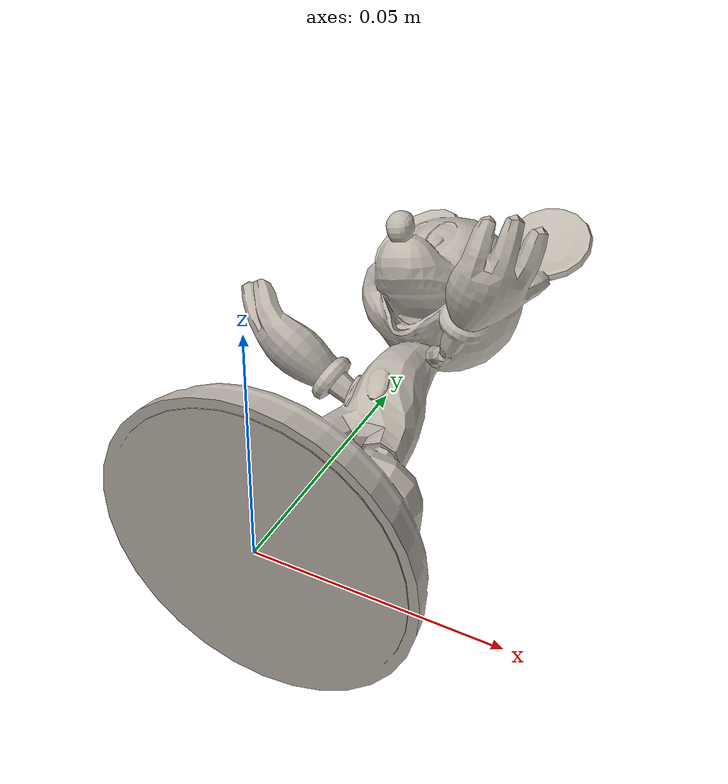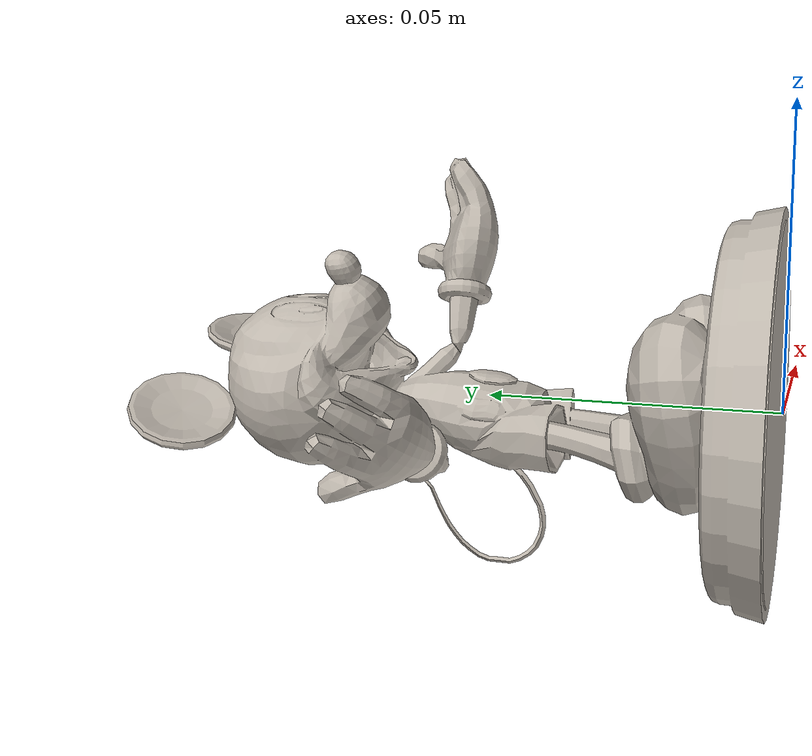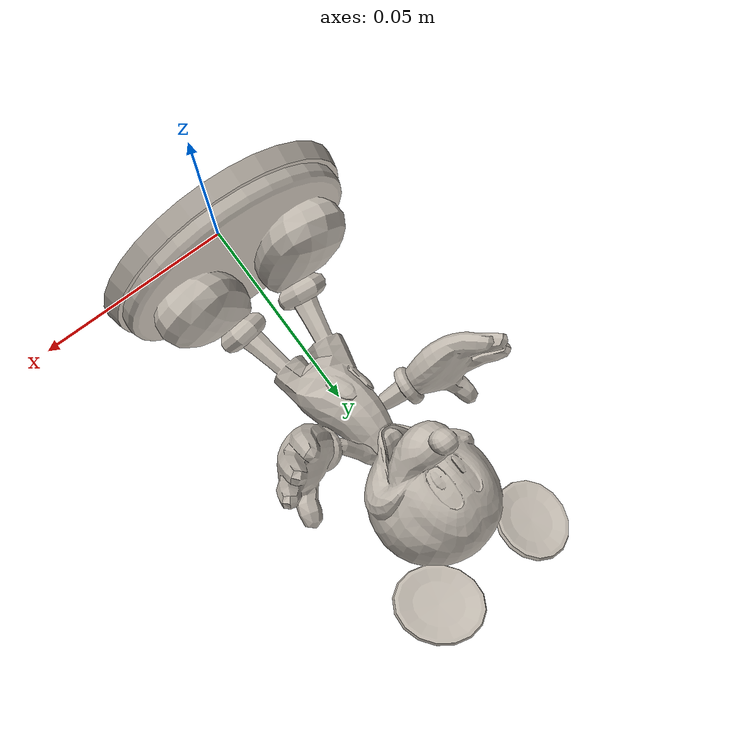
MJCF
<mujoco model="mickey">
  <default>
    <default class="visual">
      <geom group="2" type="mesh" contype="0" conaffinity="0" mass="0.1"/>
    </default>
    <default class="collision">
      <geom group="3" type="mesh" mass="0" solref="0.001 2" solimp="0.998 0.998 0.001"/>
    </default>
     <default class="grasppoint">
      <site type="sphere" size="0.01" group="4" rgba="0 0 1 1"/>
    </default>
  </default>
  <asset>
    <texture name="mickey" file="./mickey.png" type="2d"/>
    <material name="mickey" texture="mickey"/>
    <mesh name="mickey" file="./mickey.obj" scale="0.3 0.3 0.3"/>
    <mesh file="mickey_collision_0.obj" scale="0.3 0.3 0.3"/>
    <mesh file="mickey_collision_1.obj" scale="0.3 0.3 0.3"/>
    <mesh file="mickey_collision_2.obj" scale="0.3 0.3 0.3"/>
    <mesh file="mickey_collision_3.obj" scale="0.3 0.3 0.3"/>
    <mesh file="mickey_collision_4.obj" scale="0.3 0.3 0.3"/>
    <mesh file="mickey_collision_5.obj" scale="0.3 0.3 0.3"/>
    <mesh file="mickey_collision_6.obj" scale="0.3 0.3 0.3"/>
    <mesh file="mickey_collision_7.obj" scale="0.3 0.3 0.3"/>
    <mesh file="mickey_collision_8.obj" scale="0.3 0.3 0.3"/>
    <mesh file="mickey_collision_9.obj" scale="0.3 0.3 0.3"/>
    <mesh file="mickey_collision_10.obj" scale="0.3 0.3 0.3"/>
    <mesh file="mickey_collision_11.obj" scale="0.3 0.3 0.3"/>
    <mesh file="mickey_collision_12.obj" scale="0.3 0.3 0.3"/>
    <mesh file="mickey_collision_13.obj" scale="0.3 0.3 0.3"/>
    <mesh file="mickey_collision_14.obj" scale="0.3 0.3 0.3"/>
    <mesh file="mickey_collision_15.obj" scale="0.3 0.3 0.3"/>
    <mesh file="mickey_collision_16.obj" scale="0.3 0.3 0.3"/>
    <mesh file="mickey_collision_17.obj" scale="0.3 0.3 0.3"/>
    <mesh file="mickey_collision_18.obj" scale="0.3 0.3 0.3"/>
    <mesh file="mickey_collision_19.obj" scale="0.3 0.3 0.3"/>
    <mesh file="mickey_collision_20.obj" scale="0.3 0.3 0.3"/>
    <mesh file="mickey_collision_21.obj" scale="0.3 0.3 0.3"/>
    <mesh file="mickey_collision_22.obj" scale="0.3 0.3 0.3"/>
    <mesh file="mickey_collision_23.obj" scale="0.3 0.3 0.3"/>
    <mesh file="mickey_collision_24.obj" scale="0.3 0.3 0.3"/>
    <mesh file="mickey_collision_25.obj" scale="0.3 0.3 0.3"/>
    <mesh file="mickey_collision_26.obj" scale="0.3 0.3 0.3"/>
    <mesh file="mickey_collision_27.obj" scale="0.3 0.3 0.3"/>
    <mesh file="mickey_collision_28.obj" scale="0.3 0.3 0.3"/>
    <mesh file="mickey_collision_29.obj" scale="0.3 0.3 0.3"/>
    <mesh file="mickey_collision_30.obj" scale="0.3 0.3 0.3"/>
    <mesh file="mickey_collision_31.obj" scale="0.3 0.3 0.3"/>
    <mesh file="mickey_collision_32.obj" scale="0.3 0.3 0.3"/>
    <mesh file="mickey_collision_33.obj" scale="0.3 0.3 0.3"/>
    <mesh file="mickey_collision_34.obj" scale="0.3 0.3 0.3"/>
    <mesh file="mickey_collision_35.obj" scale="0.3 0.3 0.3"/>
    <mesh file="mickey_collision_36.obj" scale="0.3 0.3 0.3"/>
    <mesh file="mickey_collision_37.obj" scale="0.3 0.3 0.3"/>
    <mesh file="mickey_collision_38.obj" scale="0.3 0.3 0.3"/>
    <mesh file="mickey_collision_39.obj" scale="0.3 0.3 0.3"/>
    <mesh file="mickey_collision_40.obj" scale="0.3 0.3 0.3"/>
    <mesh file="mickey_collision_41.obj" scale="0.3 0.3 0.3"/>
    <mesh file="mickey_collision_42.obj" scale="0.3 0.3 0.3"/>
    <mesh file="mickey_collision_43.obj" scale="0.3 0.3 0.3"/>
    <mesh file="mickey_collision_44.obj" scale="0.3 0.3 0.3"/>
    <mesh file="mickey_collision_45.obj" scale="0.3 0.3 0.3"/>
    <mesh file="mickey_collision_46.obj" scale="0.3 0.3 0.3"/>
    <mesh file="mickey_collision_47.obj" scale="0.3 0.3 0.3"/>
    <mesh file="mickey_collision_48.obj" scale="0.3 0.3 0.3"/>
  </asset>
  <worldbody>
    <body name="mickey">
      <geom mesh="mickey" class="visual" material="mickey"/>
      <geom mesh="mickey_collision_0" rgba="0.38902748818992516 0.8209919069610097 0.4672937166612269 1" class="collision"/>
      <geom mesh="mickey_collision_1" rgba="0.9147313591985093 0.8077680030412155 0.008322226870032923 1" class="collision"/>
      <geom mesh="mickey_collision_2" rgba="0.4490819705685022 0.980652009226113 0.4226167908825119 1" class="collision"/>
      <geom mesh="mickey_collision_3" rgba="0.7473874857121727 0.2502377631465651 0.04571335436062185 1" class="collision"/>
      <geom mesh="mickey_collision_4" rgba="0.9729340777756366 0.4227218630600016 0.6188504905622593 1" class="collision"/>
      <geom mesh="mickey_collision_5" rgba="0.22815942955279267 0.6987234926307057 0.8000603117680011 1" class="collision"/>
      <geom mesh="mickey_collision_6" rgba="0.07430941580813433 0.7165103082872388 0.20857808627004726 1" class="collision"/>
      <geom mesh="mickey_collision_7" rgba="0.40628097054949397 0.9435162688193843 0.38915173016533233 1" class="collision"/>
      <geom mesh="mickey_collision_8" rgba="0.488893791967445 0.11589205186556595 0.5563349691276287 1" class="collision"/>
      <geom mesh="mickey_collision_9" rgba="0.6625258780882509 0.9125831394061953 0.7583917680446751 1" class="collision"/>
      <geom mesh="mickey_collision_10" rgba="0.3247948488288358 0.851097753054689 0.0696523124762215 1" class="collision"/>
      <geom mesh="mickey_collision_11" rgba="0.7637631997630988 0.6504428942500152 0.3328000137648287 1" class="collision"/>
      <geom mesh="mickey_collision_12" rgba="0.13883234708808423 0.38231924779243 0.14643814464168625 1" class="collision"/>
      <geom mesh="mickey_collision_13" rgba="0.08905862122412067 0.6988501742555904 0.542879930616753 1" class="collision"/>
      <geom mesh="mickey_collision_14" rgba="0.7130471874652161 0.34997612133155376 0.03855307160670507 1" class="collision"/>
      <geom mesh="mickey_collision_15" rgba="0.24672367833040587 0.06482200211685918 0.42106115708711067 1" class="collision"/>
      <geom mesh="mickey_collision_16" rgba="0.8979549311139912 0.9453234257007255 0.046129969084406475 1" class="collision"/>
      <geom mesh="mickey_collision_17" rgba="0.12785086572002424 0.03232515546162551 0.5760937134202135 1" class="collision"/>
      <geom mesh="mickey_collision_18" rgba="0.5099076972625236 0.43526645395930674 0.8047508990367856 1" class="collision"/>
      <geom mesh="mickey_collision_19" rgba="0.5358946068498359 0.8682107948211412 0.17188324338654504 1" class="collision"/>
      <geom mesh="mickey_collision_20" rgba="0.6102898496123063 0.7724570021945796 0.45128547650594375 1" class="collision"/>
      <geom mesh="mickey_collision_21" rgba="0.9936930506619955 0.6028277421900532 0.922068802868866 1" class="collision"/>
      <geom mesh="mickey_collision_22" rgba="0.8043047759170016 0.954769801881611 0.7109500501888764 1" class="collision"/>
      <geom mesh="mickey_collision_23" rgba="0.5998340764243695 0.483252289388569 0.9413866493051672 1" class="collision"/>
      <geom mesh="mickey_collision_24" rgba="0.7862859386901306 0.29798079808668043 0.6635545842516914 1" class="collision"/>
      <geom mesh="mickey_collision_25" rgba="0.2612411744196175 0.8429673680929886 0.10555478530621343 1" class="collision"/>
      <geom mesh="mickey_collision_26" rgba="0.13911603694275854 0.6268834766271653 0.9314300109844714 1" class="collision"/>
      <geom mesh="mickey_collision_27" rgba="0.40421194388030235 0.8847497535793459 0.42939422434981367 1" class="collision"/>
      <geom mesh="mickey_collision_28" rgba="0.6187232876267577 0.6724230103717311 0.08842826401193626 1" class="collision"/>
      <geom mesh="mickey_collision_29" rgba="0.08606885932916719 0.41132151618546253 0.6641054508724693 1" class="collision"/>
      <geom mesh="mickey_collision_30" rgba="0.49959162459962403 0.30185896240347265 0.9391276605484186 1" class="collision"/>
      <geom mesh="mickey_collision_31" rgba="0.9873272699089425 0.020046293756536437 0.20153376977121584 1" class="collision"/>
      <geom mesh="mickey_collision_32" rgba="0.9850912241200198 0.7844122475957208 0.6525445965285477 1" class="collision"/>
      <geom mesh="mickey_collision_33" rgba="0.6550901152151802 0.3403611418343757 0.40047332319287965 1" class="collision"/>
      <geom mesh="mickey_collision_34" rgba="0.710841184546715 0.9119745453085769 0.3171856663094901 1" class="collision"/>
      <geom mesh="mickey_collision_35" rgba="0.06985232216982384 0.0006969056278102181 0.7681769099222773 1" class="collision"/>
      <geom mesh="mickey_collision_36" rgba="0.22371782540600527 0.7985741475631207 0.701744302290797 1" class="collision"/>
      <geom mesh="mickey_collision_37" rgba="0.768244727976694 0.8995610462683272 0.8955327882092013 1" class="collision"/>
      <geom mesh="mickey_collision_38" rgba="0.09646461808876583 0.39440356511900077 0.5329845498910939 1" class="collision"/>
      <geom mesh="mickey_collision_39" rgba="0.6975213167347636 0.682290157960699 0.3756781502880169 1" class="collision"/>
      <geom mesh="mickey_collision_40" rgba="0.9883983370283863 0.35743700715200966 0.3117714645238864 1" class="collision"/>
      <geom mesh="mickey_collision_41" rgba="0.2720776623842108 0.4075230910353651 0.8389894459875333 1" class="collision"/>
      <geom mesh="mickey_collision_42" rgba="0.07551815543840235 0.6672586159697749 0.07982086379986586 1" class="collision"/>
      <geom mesh="mickey_collision_43" rgba="0.2629669149014481 0.3634692721502881 0.4517262293125587 1" class="collision"/>
      <geom mesh="mickey_collision_44" rgba="0.10153140359896995 0.9099416192147924 0.39191907052593444 1" class="collision"/>
      <geom mesh="mickey_collision_45" rgba="0.18099285868726278 0.32449972512755054 0.3840993930980183 1" class="collision"/>
      <geom mesh="mickey_collision_46" rgba="0.5271580248936044 0.2606374215005358 0.819687743698457 1" class="collision"/>
      <geom mesh="mickey_collision_47" rgba="0.6974010326338205 0.24721309289849525 0.4545151726390857 1" class="collision"/>
      <geom mesh="mickey_collision_48" rgba="0.7065900337586333 0.4367804917640701 0.5869811631399131 1" class="collision"/>
    </body>
    <site class="grasppoint" size="0.02" pos="0 0.08 0"/>
</worldbody>
</mujoco>
